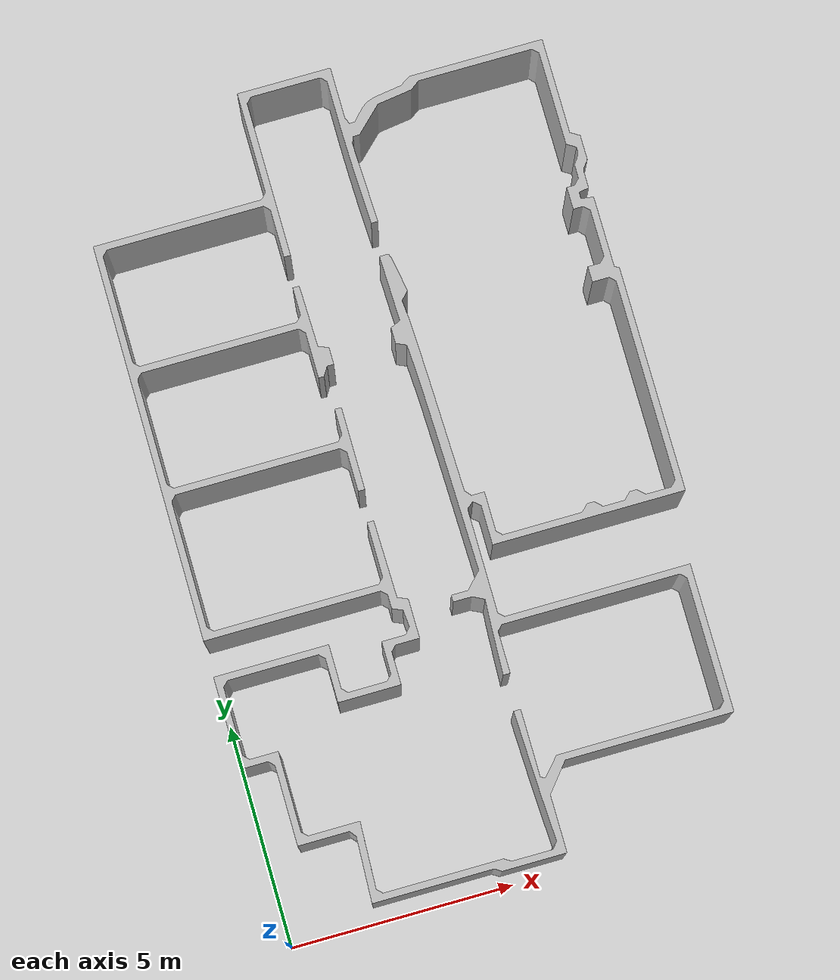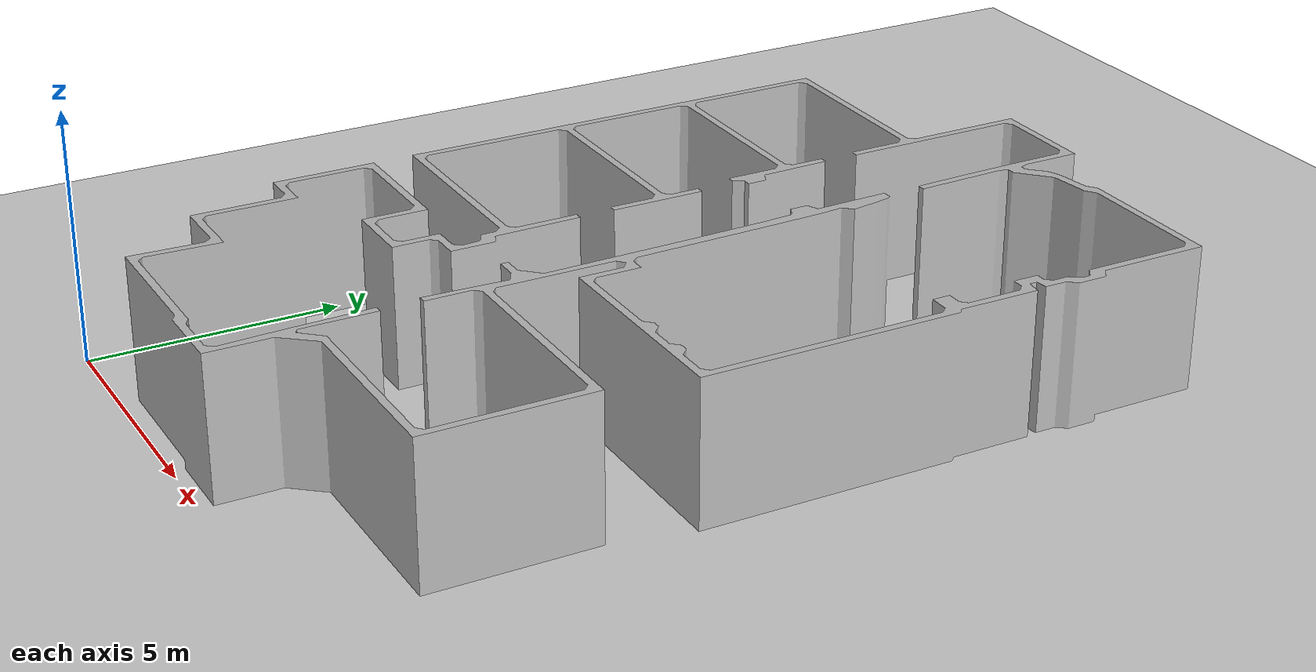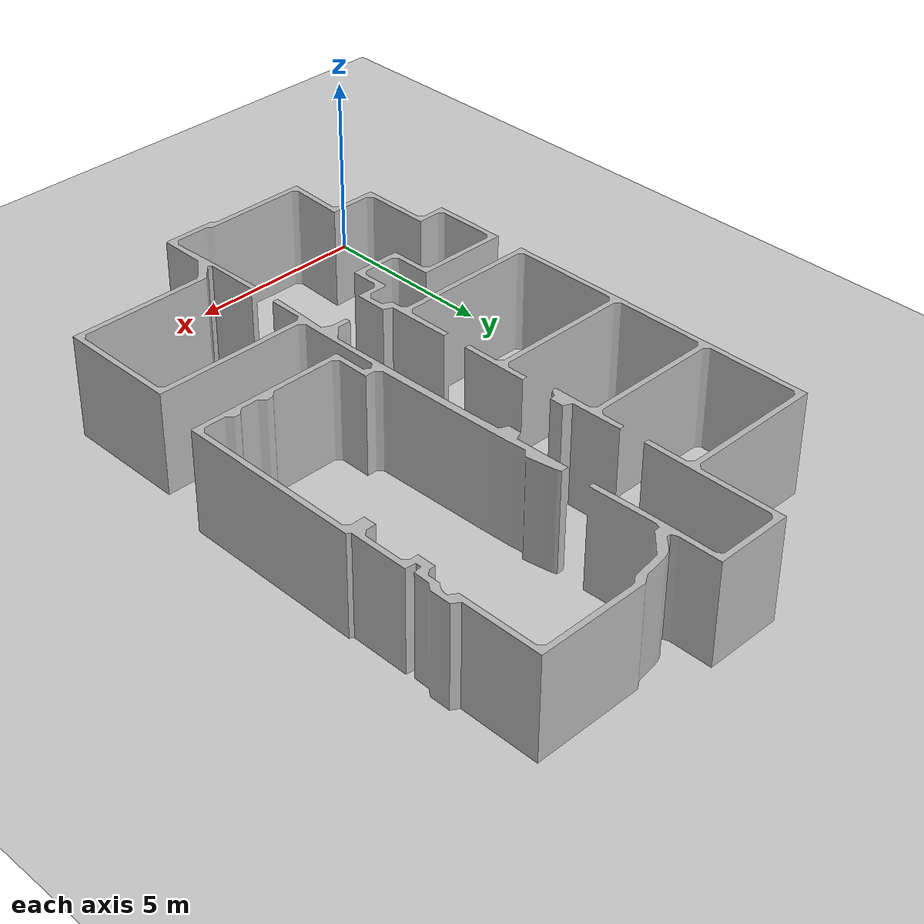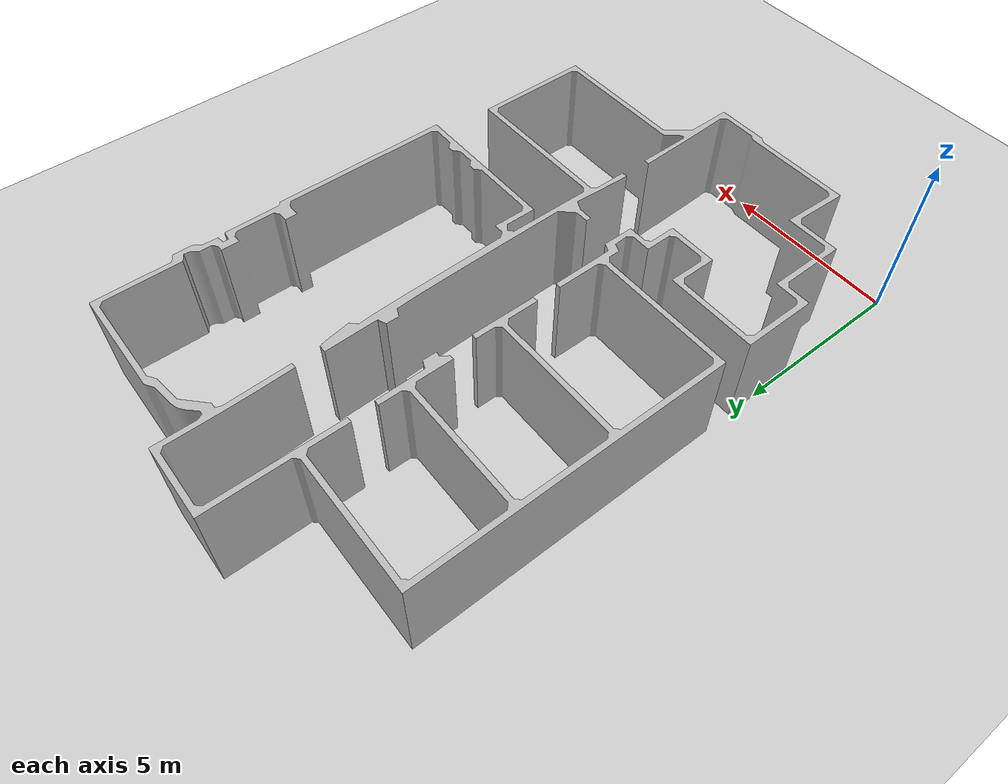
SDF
<?xml version="1.0" ?>
<sdf version="1.5">
  <world name="rh5_mrk_lab_world">
    <!-- A global light source -->
    <include>
      <uri>model://sun</uri>
    </include>
    <!-- A ground plane -->
    <include>
      <uri>model://ground_plane</uri>
    </include>

    <model name="rh5_mrk_lab">
      <static>true</static>
      <link name="rh5_mrk_lab_link">
        <pose>0 0 0 0 0 0</pose>
        <collision name="rh5_mrk_lab_collision">
          <geometry>
            <mesh>
              <uri>file://rh5_mrk_lab.stl</uri>
              <scale>1.0 1.0 1.0</scale>
            </mesh>
          </geometry>
        </collision>
        <visual name="rh5_mrk_lab_visual">
          <cast_shadows>false</cast_shadows>
          <geometry>
            <mesh>
              <uri>file://rh5_mrk_lab.stl</uri>
              <scale>1.0 1.0 1.0</scale>
            </mesh>
          </geometry>
        </visual>
      </link>
    </model>

    <gui fullscreen='0'>
      <camera name='user_camera'>
        <pose frame=''>7.57702 7.49421 3.63634 0 0.543643 0.988194</pose>
        <view_controller>orbit</view_controller>
        <projection_type>perspective</projection_type>
      </camera>
    </gui>
  </world>
</sdf>
